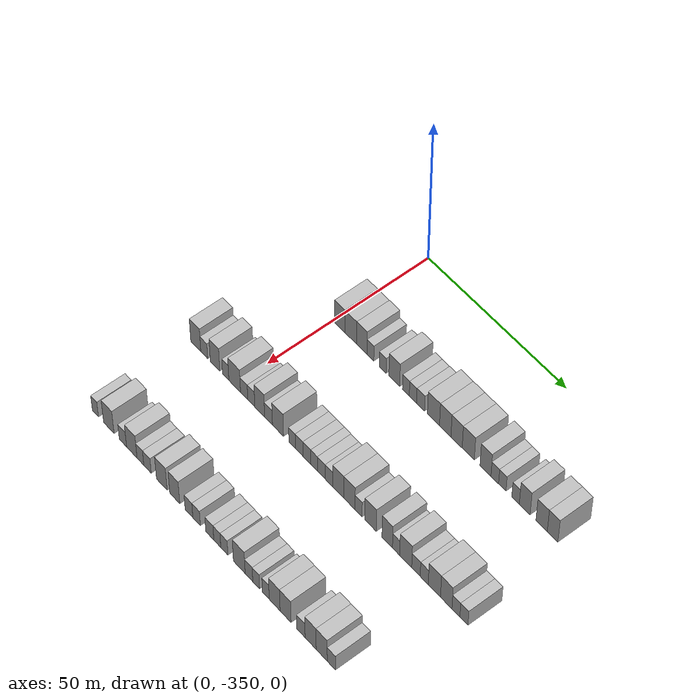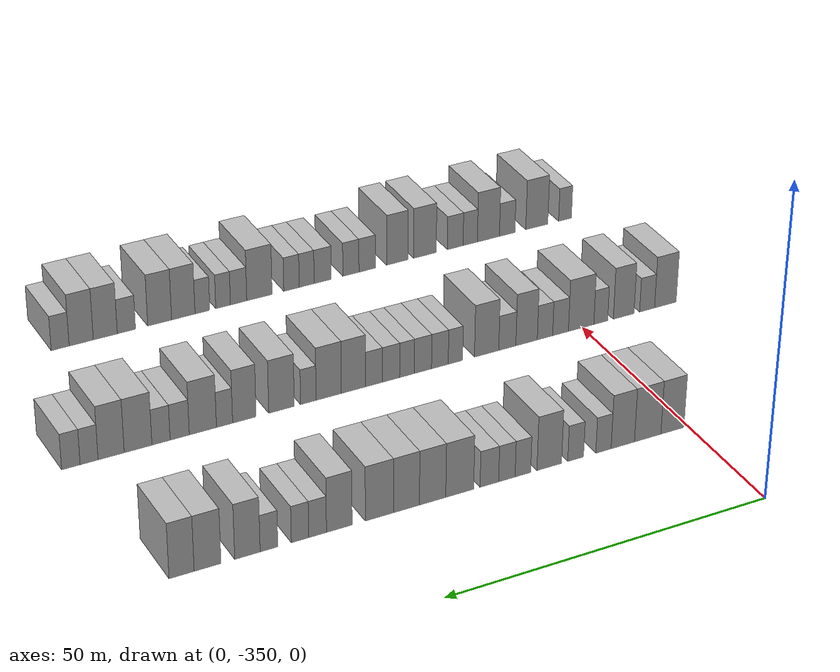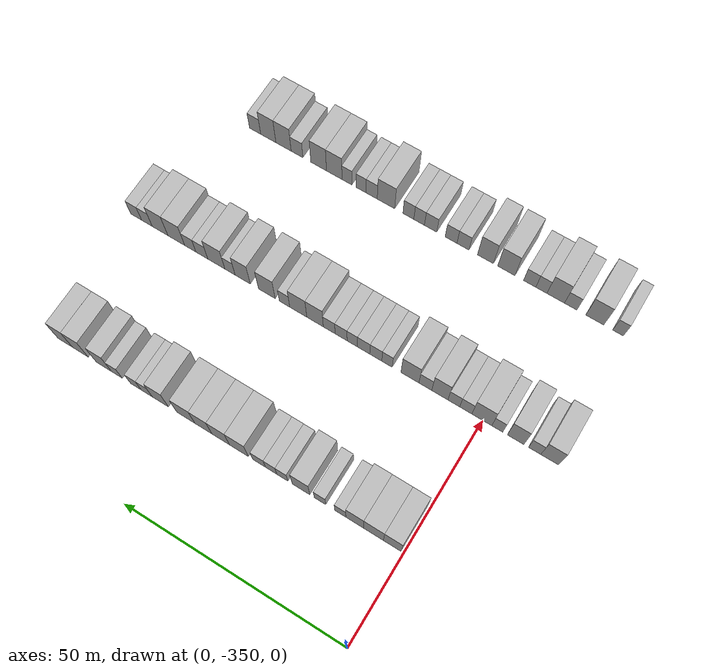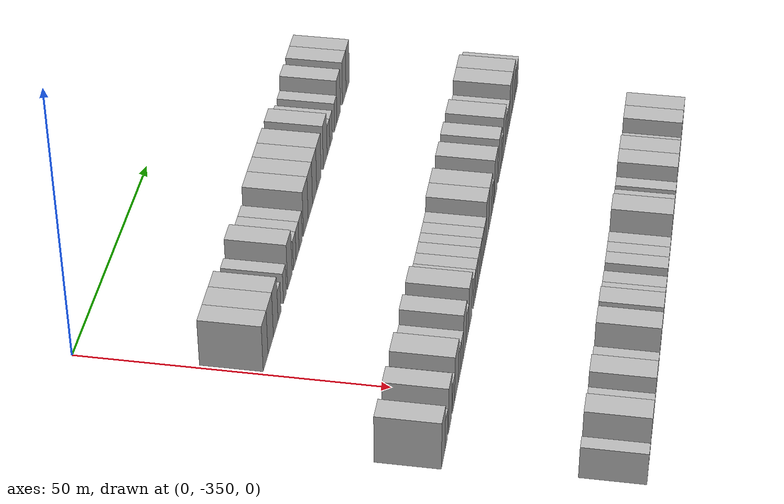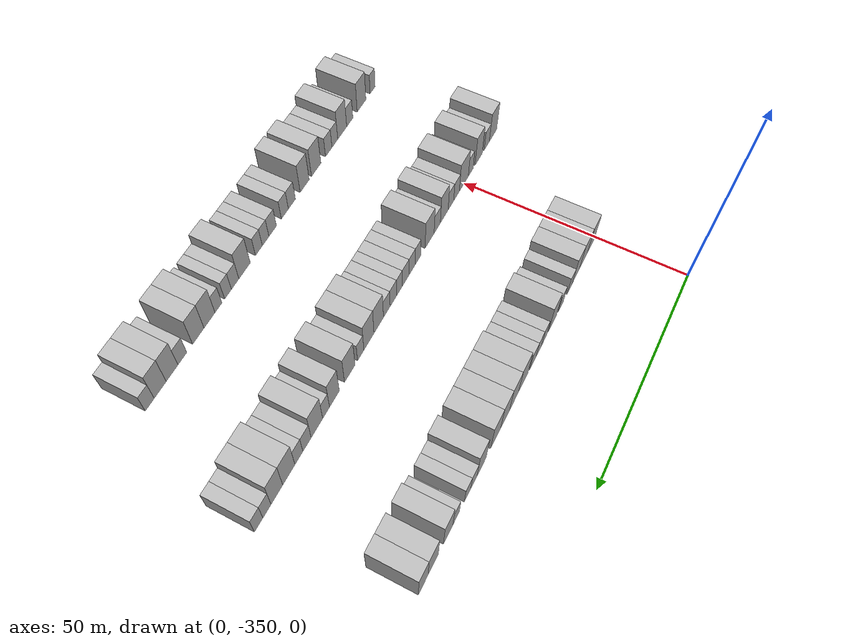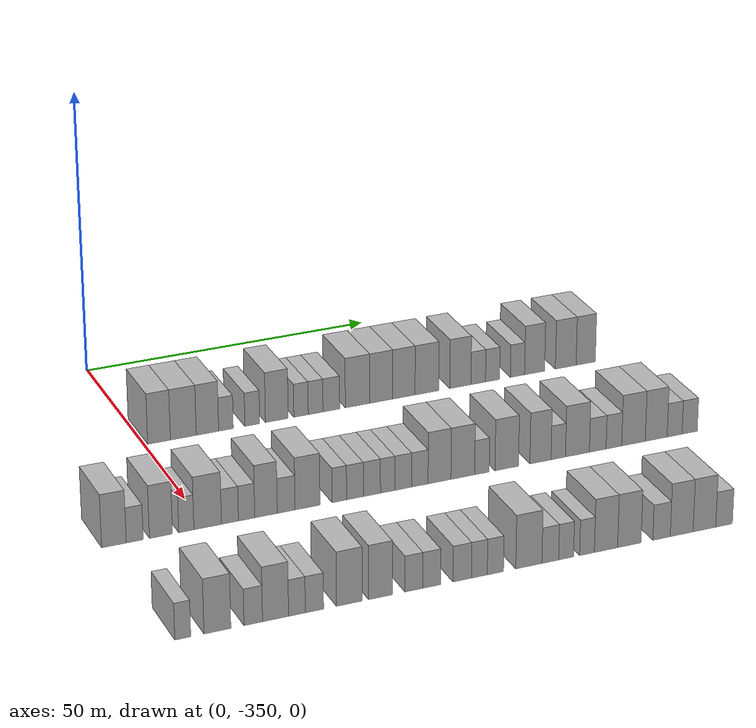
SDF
<sdf version="1.6">
 <world name="default">
  <model name="building_24">
   <static>1</static>
   <pose>25.0000 -347.3957 0 0.000000 0.000000 0.000000</pose>
   <link name="link">
    <pose>0 0 4.50 0 0 0</pose>
    <collision name="collision"><geometry><box><size>10.0000 3.8569 9.0000</size></box></geometry></collision>
    <visual name="visual">
     <cast_shadows>0</cast_shadows>
     <geometry><box><size>10.0000 3.8569 9.0000</size></box></geometry>
     <material>
      <script>
       <uri>model://HANNAS_wall/materials/scripts</uri>
       <uri>model://HANNAS_wall/materials/textures</uri>
       <name>vrc/HANNAS_wall</name>
      </script>
     </material>
    </visual>
   </link>
  </model>
  <model name="building_25">
   <static>1</static>
   <pose>25.0000 -343.2680 0 0.000000 0.000000 0.000000</pose>
   <link name="link">
    <pose>0 0 4.50 0 0 0</pose>
    <collision name="collision"><geometry><box><size>10.0000 4.3986 9.0000</size></box></geometry></collision>
    <visual name="visual">
     <cast_shadows>0</cast_shadows>
     <geometry><box><size>10.0000 4.3986 9.0000</size></box></geometry>
     <material>
      <script>
       <uri>model://HANNAS_wall/materials/scripts</uri>
       <uri>model://HANNAS_wall/materials/textures</uri>
       <name>vrc/HANNAS_wall</name>
      </script>
     </material>
    </visual>
   </link>
  </model>
  <model name="building_26">
   <static>1</static>
   <pose>25.0000 -339.1380 0 0.000000 0.000000 0.000000</pose>
   <link name="link">
    <pose>0 0 4.50 0 0 0</pose>
    <collision name="collision"><geometry><box><size>10.0000 3.8614 9.0000</size></box></geometry></collision>
    <visual name="visual">
     <cast_shadows>0</cast_shadows>
     <geometry><box><size>10.0000 3.8614 9.0000</size></box></geometry>
     <material>
      <script>
       <uri>model://HANNAS_wall/materials/scripts</uri>
       <uri>model://HANNAS_wall/materials/textures</uri>
       <name>vrc/HANNAS_wall</name>
      </script>
     </material>
    </visual>
   </link>
  </model>
  <model name="building_27">
   <static>1</static>
   <pose>25.0000 -335.9510 0 0.000000 0.000000 0.000000</pose>
   <link name="link">
    <pose>0 0 3.00 0 0 0</pose>
    <collision name="collision"><geometry><box><size>10.0000 2.5128 6.0000</size></box></geometry></collision>
    <visual name="visual">
     <cast_shadows>0</cast_shadows>
     <geometry><box><size>10.0000 2.5128 6.0000</size></box></geometry>
     <material>
      <script>
       <uri>model://HANNAS_wall/materials/scripts</uri>
       <uri>model://HANNAS_wall/materials/textures</uri>
       <name>vrc/HANNAS_wall</name>
      </script>
     </material>
    </visual>
   </link>
  </model>
  <model name="building_28">
   <static>1</static>
   <pose>25.0000 -331.4063 0 0.000000 0.000000 0.000000</pose>
   <link name="link">
    <pose>0 0 3.00 0 0 0</pose>
    <collision name="collision"><geometry><box><size>10.0000 2.5765 6.0000</size></box></geometry></collision>
    <visual name="visual">
     <cast_shadows>0</cast_shadows>
     <geometry><box><size>10.0000 2.5765 6.0000</size></box></geometry>
     <material>
      <script>
       <uri>model://HANNAS_wall/materials/scripts</uri>
       <uri>model://HANNAS_wall/materials/textures</uri>
       <name>vrc/HANNAS_wall</name>
      </script>
     </material>
    </visual>
   </link>
  </model>
  <model name="building_29">
   <static>1</static>
   <pose>25.0000 -327.1324 0 0.000000 0.000000 0.000000</pose>
   <link name="link">
    <pose>0 0 4.50 0 0 0</pose>
    <collision name="collision"><geometry><box><size>10.0000 3.9714 9.0000</size></box></geometry></collision>
    <visual name="visual">
     <cast_shadows>0</cast_shadows>
     <geometry><box><size>10.0000 3.9714 9.0000</size></box></geometry>
     <material>
      <script>
       <uri>model://HANNAS_wall/materials/scripts</uri>
       <uri>model://HANNAS_wall/materials/textures</uri>
       <name>vrc/HANNAS_wall</name>
      </script>
     </material>
    </visual>
   </link>
  </model>
  <model name="building_30">
   <static>1</static>
   <pose>25.0000 -322.8995 0 0.000000 0.000000 0.000000</pose>
   <link name="link">
    <pose>0 0 3.00 0 0 0</pose>
    <collision name="collision"><geometry><box><size>10.0000 2.4942 6.0000</size></box></geometry></collision>
    <visual name="visual">
     <cast_shadows>0</cast_shadows>
     <geometry><box><size>10.0000 2.4942 6.0000</size></box></geometry>
     <material>
      <script>
       <uri>model://HANNAS_wall/materials/scripts</uri>
       <uri>model://HANNAS_wall/materials/textures</uri>
       <name>vrc/HANNAS_wall</name>
      </script>
     </material>
    </visual>
   </link>
  </model>
  <model name="building_31">
   <static>1</static>
   <pose>25.0000 -320.3412 0 0.000000 0.000000 0.000000</pose>
   <link name="link">
    <pose>0 0 3.00 0 0 0</pose>
    <collision name="collision"><geometry><box><size>10.0000 2.6224 6.0000</size></box></geometry></collision>
    <visual name="visual">
     <cast_shadows>0</cast_shadows>
     <geometry><box><size>10.0000 2.6224 6.0000</size></box></geometry>
     <material>
      <script>
       <uri>model://HANNAS_wall/materials/scripts</uri>
       <uri>model://HANNAS_wall/materials/textures</uri>
       <name>vrc/HANNAS_wall</name>
      </script>
     </material>
    </visual>
   </link>
  </model>
  <model name="building_32">
   <static>1</static>
   <pose>25.0000 -317.5554 0 0.000000 0.000000 0.000000</pose>
   <link name="link">
    <pose>0 0 3.00 0 0 0</pose>
    <collision name="collision"><geometry><box><size>10.0000 2.9493 6.0000</size></box></geometry></collision>
    <visual name="visual">
     <cast_shadows>0</cast_shadows>
     <geometry><box><size>10.0000 2.9493 6.0000</size></box></geometry>
     <material>
      <script>
       <uri>model://HANNAS_wall/materials/scripts</uri>
       <uri>model://HANNAS_wall/materials/textures</uri>
       <name>vrc/HANNAS_wall</name>
      </script>
     </material>
    </visual>
   </link>
  </model>
  <model name="building_33">
   <static>1</static>
   <pose>25.0000 -312.8945 0 0.000000 0.000000 0.000000</pose>
   <link name="link">
    <pose>0 0 4.50 0 0 0</pose>
    <collision name="collision"><geometry><box><size>10.0000 4.3726 9.0000</size></box></geometry></collision>
    <visual name="visual">
     <cast_shadows>0</cast_shadows>
     <geometry><box><size>10.0000 4.3726 9.0000</size></box></geometry>
     <material>
      <script>
       <uri>model://HANNAS_wall/materials/scripts</uri>
       <uri>model://HANNAS_wall/materials/textures</uri>
       <name>vrc/HANNAS_wall</name>
      </script>
     </material>
    </visual>
   </link>
  </model>
  <model name="building_34">
   <static>1</static>
   <pose>25.0000 -308.6578 0 0.000000 0.000000 0.000000</pose>
   <link name="link">
    <pose>0 0 4.50 0 0 0</pose>
    <collision name="collision"><geometry><box><size>10.0000 4.1007 9.0000</size></box></geometry></collision>
    <visual name="visual">
     <cast_shadows>0</cast_shadows>
     <geometry><box><size>10.0000 4.1007 9.0000</size></box></geometry>
     <material>
      <script>
       <uri>model://HANNAS_wall/materials/scripts</uri>
       <uri>model://HANNAS_wall/materials/textures</uri>
       <name>vrc/HANNAS_wall</name>
      </script>
     </material>
    </visual>
   </link>
  </model>
  <model name="building_35">
   <static>1</static>
   <pose>25.0000 -304.6056 0 0.000000 0.000000 0.000000</pose>
   <link name="link">
    <pose>0 0 4.50 0 0 0</pose>
    <collision name="collision"><geometry><box><size>10.0000 4.0038 9.0000</size></box></geometry></collision>
    <visual name="visual">
     <cast_shadows>0</cast_shadows>
     <geometry><box><size>10.0000 4.0038 9.0000</size></box></geometry>
     <material>
      <script>
       <uri>model://HANNAS_wall/materials/scripts</uri>
       <uri>model://HANNAS_wall/materials/textures</uri>
       <name>vrc/HANNAS_wall</name>
      </script>
     </material>
    </visual>
   </link>
  </model>
  <model name="building_36">
   <static>1</static>
   <pose>25.0000 -300.4515 0 0.000000 0.000000 0.000000</pose>
   <link name="link">
    <pose>0 0 4.50 0 0 0</pose>
    <collision name="collision"><geometry><box><size>10.0000 4.3042 9.0000</size></box></geometry></collision>
    <visual name="visual">
     <cast_shadows>0</cast_shadows>
     <geometry><box><size>10.0000 4.3042 9.0000</size></box></geometry>
     <material>
      <script>
       <uri>model://HANNAS_wall/materials/scripts</uri>
       <uri>model://HANNAS_wall/materials/textures</uri>
       <name>vrc/HANNAS_wall</name>
      </script>
     </material>
    </visual>
   </link>
  </model>
  <model name="building_37">
   <static>1</static>
   <pose>25.0000 -294.3647 0 0.000000 0.000000 0.000000</pose>
   <link name="link">
    <pose>0 0 4.50 0 0 0</pose>
    <collision name="collision"><geometry><box><size>10.0000 3.8694 9.0000</size></box></geometry></collision>
    <visual name="visual">
     <cast_shadows>0</cast_shadows>
     <geometry><box><size>10.0000 3.8694 9.0000</size></box></geometry>
     <material>
      <script>
       <uri>model://HANNAS_wall/materials/scripts</uri>
       <uri>model://HANNAS_wall/materials/textures</uri>
       <name>vrc/HANNAS_wall</name>
      </script>
     </material>
    </visual>
   </link>
  </model>
  <model name="building_38">
   <static>1</static>
   <pose>25.0000 -291.0987 0 0.000000 0.000000 0.000000</pose>
   <link name="link">
    <pose>0 0 3.00 0 0 0</pose>
    <collision name="collision"><geometry><box><size>10.0000 2.6625 6.0000</size></box></geometry></collision>
    <visual name="visual">
     <cast_shadows>0</cast_shadows>
     <geometry><box><size>10.0000 2.6625 6.0000</size></box></geometry>
     <material>
      <script>
       <uri>model://HANNAS_wall/materials/scripts</uri>
       <uri>model://HANNAS_wall/materials/textures</uri>
       <name>vrc/HANNAS_wall</name>
      </script>
     </material>
    </visual>
   </link>
  </model>
  <model name="building_39">
   <static>1</static>
   <pose>25.0000 -288.4681 0 0.000000 0.000000 0.000000</pose>
   <link name="link">
    <pose>0 0 3.00 0 0 0</pose>
    <collision name="collision"><geometry><box><size>10.0000 2.5986 6.0000</size></box></geometry></collision>
    <visual name="visual">
     <cast_shadows>0</cast_shadows>
     <geometry><box><size>10.0000 2.5986 6.0000</size></box></geometry>
     <material>
      <script>
       <uri>model://HANNAS_wall/materials/scripts</uri>
       <uri>model://HANNAS_wall/materials/textures</uri>
       <name>vrc/HANNAS_wall</name>
      </script>
     </material>
    </visual>
   </link>
  </model>
  <model name="building_40">
   <static>1</static>
   <pose>25.0000 -283.8623 0 0.000000 0.000000 0.000000</pose>
   <link name="link">
    <pose>0 0 3.00 0 0 0</pose>
    <collision name="collision"><geometry><box><size>10.0000 2.6131 6.0000</size></box></geometry></collision>
    <visual name="visual">
     <cast_shadows>0</cast_shadows>
     <geometry><box><size>10.0000 2.6131 6.0000</size></box></geometry>
     <material>
      <script>
       <uri>model://HANNAS_wall/materials/scripts</uri>
       <uri>model://HANNAS_wall/materials/textures</uri>
       <name>vrc/HANNAS_wall</name>
      </script>
     </material>
    </visual>
   </link>
  </model>
  <model name="building_41">
   <static>1</static>
   <pose>25.0000 -280.6888 0 0.000000 0.000000 0.000000</pose>
   <link name="link">
    <pose>0 0 4.50 0 0 0</pose>
    <collision name="collision"><geometry><box><size>10.0000 3.7339 9.0000</size></box></geometry></collision>
    <visual name="visual">
     <cast_shadows>0</cast_shadows>
     <geometry><box><size>10.0000 3.7339 9.0000</size></box></geometry>
     <material>
      <script>
       <uri>model://HANNAS_wall/materials/scripts</uri>
       <uri>model://HANNAS_wall/materials/textures</uri>
       <name>vrc/HANNAS_wall</name>
      </script>
     </material>
    </visual>
   </link>
  </model>
  <model name="building_42">
   <static>1</static>
   <pose>25.0000 -274.8779 0 0.000000 0.000000 0.000000</pose>
   <link name="link">
    <pose>0 0 4.50 0 0 0</pose>
    <collision name="collision"><geometry><box><size>10.0000 3.8879 9.0000</size></box></geometry></collision>
    <visual name="visual">
     <cast_shadows>0</cast_shadows>
     <geometry><box><size>10.0000 3.8879 9.0000</size></box></geometry>
     <material>
      <script>
       <uri>model://HANNAS_wall/materials/scripts</uri>
       <uri>model://HANNAS_wall/materials/textures</uri>
       <name>vrc/HANNAS_wall</name>
      </script>
     </material>
    </visual>
   </link>
  </model>
  <model name="building_43">
   <static>1</static>
   <pose>25.0000 -271.1215 0 0.000000 0.000000 0.000000</pose>
   <link name="link">
    <pose>0 0 4.50 0 0 0</pose>
    <collision name="collision"><geometry><box><size>10.0000 3.6248 9.0000</size></box></geometry></collision>
    <visual name="visual">
     <cast_shadows>0</cast_shadows>
     <geometry><box><size>10.0000 3.6248 9.0000</size></box></geometry>
     <material>
      <script>
       <uri>model://HANNAS_wall/materials/scripts</uri>
       <uri>model://HANNAS_wall/materials/textures</uri>
       <name>vrc/HANNAS_wall</name>
      </script>
     </material>
    </visual>
   </link>
  </model>
  <model name="building_244">
   <static>1</static>
   <pose>55.0000 -364.7616 0 0.000000 0.000000 0.000000</pose>
   <link name="link">
    <pose>0 0 4.50 0 0 0</pose>
    <collision name="collision"><geometry><box><size>10.0000 3.8888 9.0000</size></box></geometry></collision>
    <visual name="visual">
     <cast_shadows>0</cast_shadows>
     <geometry><box><size>10.0000 3.8888 9.0000</size></box></geometry>
     <material>
      <script>
       <uri>model://HANNAS_wall/materials/scripts</uri>
       <uri>model://HANNAS_wall/materials/textures</uri>
       <name>vrc/HANNAS_wall</name>
      </script>
     </material>
    </visual>
   </link>
  </model>
  <model name="building_245">
   <static>1</static>
   <pose>55.0000 -361.4739 0 0.000000 0.000000 0.000000</pose>
   <link name="link">
    <pose>0 0 3.00 0 0 0</pose>
    <collision name="collision"><geometry><box><size>10.0000 2.6866 6.0000</size></box></geometry></collision>
    <visual name="visual">
     <cast_shadows>0</cast_shadows>
     <geometry><box><size>10.0000 2.6866 6.0000</size></box></geometry>
     <material>
      <script>
       <uri>model://HANNAS_wall/materials/scripts</uri>
       <uri>model://HANNAS_wall/materials/textures</uri>
       <name>vrc/HANNAS_wall</name>
      </script>
     </material>
    </visual>
   </link>
  </model>
  <model name="building_246">
   <static>1</static>
   <pose>55.0000 -357.2918 0 0.000000 0.000000 0.000000</pose>
   <link name="link">
    <pose>0 0 4.50 0 0 0</pose>
    <collision name="collision"><geometry><box><size>10.0000 3.6776 9.0000</size></box></geometry></collision>
    <visual name="visual">
     <cast_shadows>0</cast_shadows>
     <geometry><box><size>10.0000 3.6776 9.0000</size></box></geometry>
     <material>
      <script>
       <uri>model://HANNAS_wall/materials/scripts</uri>
       <uri>model://HANNAS_wall/materials/textures</uri>
       <name>vrc/HANNAS_wall</name>
      </script>
     </material>
    </visual>
   </link>
  </model>
  <model name="building_247">
   <static>1</static>
   <pose>55.0000 -353.2321 0 0.000000 0.000000 0.000000</pose>
   <link name="link">
    <pose>0 0 3.00 0 0 0</pose>
    <collision name="collision"><geometry><box><size>10.0000 2.4418 6.0000</size></box></geometry></collision>
    <visual name="visual">
     <cast_shadows>0</cast_shadows>
     <geometry><box><size>10.0000 2.4418 6.0000</size></box></geometry>
     <material>
      <script>
       <uri>model://HANNAS_wall/materials/scripts</uri>
       <uri>model://HANNAS_wall/materials/textures</uri>
       <name>vrc/HANNAS_wall</name>
      </script>
     </material>
    </visual>
   </link>
  </model>
  <model name="building_248">
   <static>1</static>
   <pose>55.0000 -349.7843 0 0.000000 0.000000 0.000000</pose>
   <link name="link">
    <pose>0 0 4.50 0 0 0</pose>
    <collision name="collision"><geometry><box><size>10.0000 4.4538 9.0000</size></box></geometry></collision>
    <visual name="visual">
     <cast_shadows>0</cast_shadows>
     <geometry><box><size>10.0000 4.4538 9.0000</size></box></geometry>
     <material>
      <script>
       <uri>model://HANNAS_wall/materials/scripts</uri>
       <uri>model://HANNAS_wall/materials/textures</uri>
       <name>vrc/HANNAS_wall</name>
      </script>
     </material>
    </visual>
   </link>
  </model>
  <model name="building_249">
   <static>1</static>
   <pose>55.0000 -346.1826 0 0.000000 0.000000 0.000000</pose>
   <link name="link">
    <pose>0 0 3.00 0 0 0</pose>
    <collision name="collision"><geometry><box><size>10.0000 2.7496 6.0000</size></box></geometry></collision>
    <visual name="visual">
     <cast_shadows>0</cast_shadows>
     <geometry><box><size>10.0000 2.7496 6.0000</size></box></geometry>
     <material>
      <script>
       <uri>model://HANNAS_wall/materials/scripts</uri>
       <uri>model://HANNAS_wall/materials/textures</uri>
       <name>vrc/HANNAS_wall</name>
      </script>
     </material>
    </visual>
   </link>
  </model>
  <model name="building_250">
   <static>1</static>
   <pose>55.0000 -343.4748 0 0.000000 0.000000 0.000000</pose>
   <link name="link">
    <pose>0 0 3.00 0 0 0</pose>
    <collision name="collision"><geometry><box><size>10.0000 2.6660 6.0000</size></box></geometry></collision>
    <visual name="visual">
     <cast_shadows>0</cast_shadows>
     <geometry><box><size>10.0000 2.6660 6.0000</size></box></geometry>
     <material>
      <script>
       <uri>model://HANNAS_wall/materials/scripts</uri>
       <uri>model://HANNAS_wall/materials/textures</uri>
       <name>vrc/HANNAS_wall</name>
      </script>
     </material>
    </visual>
   </link>
  </model>
  <model name="building_251">
   <static>1</static>
   <pose>55.0000 -340.2932 0 0.000000 0.000000 0.000000</pose>
   <link name="link">
    <pose>0 0 4.50 0 0 0</pose>
    <collision name="collision"><geometry><box><size>10.0000 3.6972 9.0000</size></box></geometry></collision>
    <visual name="visual">
     <cast_shadows>0</cast_shadows>
     <geometry><box><size>10.0000 3.6972 9.0000</size></box></geometry>
     <material>
      <script>
       <uri>model://HANNAS_wall/materials/scripts</uri>
       <uri>model://HANNAS_wall/materials/textures</uri>
       <name>vrc/HANNAS_wall</name>
      </script>
     </material>
    </visual>
   </link>
  </model>
  <model name="building_252">
   <static>1</static>
   <pose>55.0000 -336.9794 0 0.000000 0.000000 0.000000</pose>
   <link name="link">
    <pose>0 0 3.00 0 0 0</pose>
    <collision name="collision"><geometry><box><size>10.0000 2.9304 6.0000</size></box></geometry></collision>
    <visual name="visual">
     <cast_shadows>0</cast_shadows>
     <geometry><box><size>10.0000 2.9304 6.0000</size></box></geometry>
     <material>
      <script>
       <uri>model://HANNAS_wall/materials/scripts</uri>
       <uri>model://HANNAS_wall/materials/textures</uri>
       <name>vrc/HANNAS_wall</name>
      </script>
     </material>
    </visual>
   </link>
  </model>
  <model name="building_253">
   <static>1</static>
   <pose>55.0000 -333.4476 0 0.000000 0.000000 0.000000</pose>
   <link name="link">
    <pose>0 0 4.50 0 0 0</pose>
    <collision name="collision"><geometry><box><size>10.0000 4.1332 9.0000</size></box></geometry></collision>
    <visual name="visual">
     <cast_shadows>0</cast_shadows>
     <geometry><box><size>10.0000 4.1332 9.0000</size></box></geometry>
     <material>
      <script>
       <uri>model://HANNAS_wall/materials/scripts</uri>
       <uri>model://HANNAS_wall/materials/textures</uri>
       <name>vrc/HANNAS_wall</name>
      </script>
     </material>
    </visual>
   </link>
  </model>
  <model name="building_254">
   <static>1</static>
   <pose>55.0000 -328.1668 0 0.000000 0.000000 0.000000</pose>
   <link name="link">
    <pose>0 0 3.00 0 0 0</pose>
    <collision name="collision"><geometry><box><size>10.0000 2.4283 6.0000</size></box></geometry></collision>
    <visual name="visual">
     <cast_shadows>0</cast_shadows>
     <geometry><box><size>10.0000 2.4283 6.0000</size></box></geometry>
     <material>
      <script>
       <uri>model://HANNAS_wall/materials/scripts</uri>
       <uri>model://HANNAS_wall/materials/textures</uri>
       <name>vrc/HANNAS_wall</name>
      </script>
     </material>
    </visual>
   </link>
  </model>
  <model name="building_255">
   <static>1</static>
   <pose>55.0000 -325.5497 0 0.000000 0.000000 0.000000</pose>
   <link name="link">
    <pose>0 0 3.00 0 0 0</pose>
    <collision name="collision"><geometry><box><size>10.0000 2.8059 6.0000</size></box></geometry></collision>
    <visual name="visual">
     <cast_shadows>0</cast_shadows>
     <geometry><box><size>10.0000 2.8059 6.0000</size></box></geometry>
     <material>
      <script>
       <uri>model://HANNAS_wall/materials/scripts</uri>
       <uri>model://HANNAS_wall/materials/textures</uri>
       <name>vrc/HANNAS_wall</name>
      </script>
     </material>
    </visual>
   </link>
  </model>
  <model name="building_256">
   <static>1</static>
   <pose>55.0000 -322.7046 0 0.000000 0.000000 0.000000</pose>
   <link name="link">
    <pose>0 0 3.00 0 0 0</pose>
    <collision name="collision"><geometry><box><size>10.0000 2.8844 6.0000</size></box></geometry></collision>
    <visual name="visual">
     <cast_shadows>0</cast_shadows>
     <geometry><box><size>10.0000 2.8844 6.0000</size></box></geometry>
     <material>
      <script>
       <uri>model://HANNAS_wall/materials/scripts</uri>
       <uri>model://HANNAS_wall/materials/textures</uri>
       <name>vrc/HANNAS_wall</name>
      </script>
     </material>
    </visual>
   </link>
  </model>
  <model name="building_257">
   <static>1</static>
   <pose>55.0000 -320.0494 0 0.000000 0.000000 0.000000</pose>
   <link name="link">
    <pose>0 0 3.00 0 0 0</pose>
    <collision name="collision"><geometry><box><size>10.0000 2.4260 6.0000</size></box></geometry></collision>
    <visual name="visual">
     <cast_shadows>0</cast_shadows>
     <geometry><box><size>10.0000 2.4260 6.0000</size></box></geometry>
     <material>
      <script>
       <uri>model://HANNAS_wall/materials/scripts</uri>
       <uri>model://HANNAS_wall/materials/textures</uri>
       <name>vrc/HANNAS_wall</name>
      </script>
     </material>
    </visual>
   </link>
  </model>
  <model name="building_258">
   <static>1</static>
   <pose>55.0000 -317.4178 0 0.000000 0.000000 0.000000</pose>
   <link name="link">
    <pose>0 0 3.00 0 0 0</pose>
    <collision name="collision"><geometry><box><size>10.0000 2.8371 6.0000</size></box></geometry></collision>
    <visual name="visual">
     <cast_shadows>0</cast_shadows>
     <geometry><box><size>10.0000 2.8371 6.0000</size></box></geometry>
     <material>
      <script>
       <uri>model://HANNAS_wall/materials/scripts</uri>
       <uri>model://HANNAS_wall/materials/textures</uri>
       <name>vrc/HANNAS_wall</name>
      </script>
     </material>
    </visual>
   </link>
  </model>
  <model name="building_259">
   <static>1</static>
   <pose>55.0000 -314.5992 0 0.000000 0.000000 0.000000</pose>
   <link name="link">
    <pose>0 0 3.00 0 0 0</pose>
    <collision name="collision"><geometry><box><size>10.0000 2.8001 6.0000</size></box></geometry></collision>
    <visual name="visual">
     <cast_shadows>0</cast_shadows>
     <geometry><box><size>10.0000 2.8001 6.0000</size></box></geometry>
     <material>
      <script>
       <uri>model://HANNAS_wall/materials/scripts</uri>
       <uri>model://HANNAS_wall/materials/textures</uri>
       <name>vrc/HANNAS_wall</name>
      </script>
     </material>
    </visual>
   </link>
  </model>
  <model name="building_260">
   <static>1</static>
   <pose>55.0000 -311.2375 0 0.000000 0.000000 0.000000</pose>
   <link name="link">
    <pose>0 0 4.50 0 0 0</pose>
    <collision name="collision"><geometry><box><size>10.0000 3.9233 9.0000</size></box></geometry></collision>
    <visual name="visual">
     <cast_shadows>0</cast_shadows>
     <geometry><box><size>10.0000 3.9233 9.0000</size></box></geometry>
     <material>
      <script>
       <uri>model://HANNAS_wall/materials/scripts</uri>
       <uri>model://HANNAS_wall/materials/textures</uri>
       <name>vrc/HANNAS_wall</name>
      </script>
     </material>
    </visual>
   </link>
  </model>
  <model name="building_261">
   <static>1</static>
   <pose>55.0000 -307.2327 0 0.000000 0.000000 0.000000</pose>
   <link name="link">
    <pose>0 0 4.50 0 0 0</pose>
    <collision name="collision"><geometry><box><size>10.0000 4.0862 9.0000</size></box></geometry></collision>
    <visual name="visual">
     <cast_shadows>0</cast_shadows>
     <geometry><box><size>10.0000 4.0862 9.0000</size></box></geometry>
     <material>
      <script>
       <uri>model://HANNAS_wall/materials/scripts</uri>
       <uri>model://HANNAS_wall/materials/textures</uri>
       <name>vrc/HANNAS_wall</name>
      </script>
     </material>
    </visual>
   </link>
  </model>
  <model name="building_262">
   <static>1</static>
   <pose>55.0000 -303.9327 0 0.000000 0.000000 0.000000</pose>
   <link name="link">
    <pose>0 0 3.00 0 0 0</pose>
    <collision name="collision"><geometry><box><size>10.0000 2.5137 6.0000</size></box></geometry></collision>
    <visual name="visual">
     <cast_shadows>0</cast_shadows>
     <geometry><box><size>10.0000 2.5137 6.0000</size></box></geometry>
     <material>
      <script>
       <uri>model://HANNAS_wall/materials/scripts</uri>
       <uri>model://HANNAS_wall/materials/textures</uri>
       <name>vrc/HANNAS_wall</name>
      </script>
     </material>
    </visual>
   </link>
  </model>
  <model name="building_263">
   <static>1</static>
   <pose>55.0000 -299.6352 0 0.000000 0.000000 0.000000</pose>
   <link name="link">
    <pose>0 0 4.50 0 0 0</pose>
    <collision name="collision"><geometry><box><size>10.0000 4.0812 9.0000</size></box></geometry></collision>
    <visual name="visual">
     <cast_shadows>0</cast_shadows>
     <geometry><box><size>10.0000 4.0812 9.0000</size></box></geometry>
     <material>
      <script>
       <uri>model://HANNAS_wall/materials/scripts</uri>
       <uri>model://HANNAS_wall/materials/textures</uri>
       <name>vrc/HANNAS_wall</name>
      </script>
     </material>
    </visual>
   </link>
  </model>
  <model name="building_264">
   <static>1</static>
   <pose>55.0000 -293.7382 0 0.000000 0.000000 0.000000</pose>
   <link name="link">
    <pose>0 0 4.50 0 0 0</pose>
    <collision name="collision"><geometry><box><size>10.0000 3.7128 9.0000</size></box></geometry></collision>
    <visual name="visual">
     <cast_shadows>0</cast_shadows>
     <geometry><box><size>10.0000 3.7128 9.0000</size></box></geometry>
     <material>
      <script>
       <uri>model://HANNAS_wall/materials/scripts</uri>
       <uri>model://HANNAS_wall/materials/textures</uri>
       <name>vrc/HANNAS_wall</name>
      </script>
     </material>
    </visual>
   </link>
  </model>
  <model name="building_265">
   <static>1</static>
   <pose>55.0000 -290.6128 0 0.000000 0.000000 0.000000</pose>
   <link name="link">
    <pose>0 0 3.00 0 0 0</pose>
    <collision name="collision"><geometry><box><size>10.0000 2.5380 6.0000</size></box></geometry></collision>
    <visual name="visual">
     <cast_shadows>0</cast_shadows>
     <geometry><box><size>10.0000 2.5380 6.0000</size></box></geometry>
     <material>
      <script>
       <uri>model://HANNAS_wall/materials/scripts</uri>
       <uri>model://HANNAS_wall/materials/textures</uri>
       <name>vrc/HANNAS_wall</name>
      </script>
     </material>
    </visual>
   </link>
  </model>
  <model name="building_266">
   <static>1</static>
   <pose>55.0000 -287.2276 0 0.000000 0.000000 0.000000</pose>
   <link name="link">
    <pose>0 0 4.50 0 0 0</pose>
    <collision name="collision"><geometry><box><size>10.0000 4.2324 9.0000</size></box></geometry></collision>
    <visual name="visual">
     <cast_shadows>0</cast_shadows>
     <geometry><box><size>10.0000 4.2324 9.0000</size></box></geometry>
     <material>
      <script>
       <uri>model://HANNAS_wall/materials/scripts</uri>
       <uri>model://HANNAS_wall/materials/textures</uri>
       <name>vrc/HANNAS_wall</name>
      </script>
     </material>
    </visual>
   </link>
  </model>
  <model name="building_267">
   <static>1</static>
   <pose>55.0000 -283.6279 0 0.000000 0.000000 0.000000</pose>
   <link name="link">
    <pose>0 0 3.00 0 0 0</pose>
    <collision name="collision"><geometry><box><size>10.0000 2.9670 6.0000</size></box></geometry></collision>
    <visual name="visual">
     <cast_shadows>0</cast_shadows>
     <geometry><box><size>10.0000 2.9670 6.0000</size></box></geometry>
     <material>
      <script>
       <uri>model://HANNAS_wall/materials/scripts</uri>
       <uri>model://HANNAS_wall/materials/textures</uri>
       <name>vrc/HANNAS_wall</name>
      </script>
     </material>
    </visual>
   </link>
  </model>
  <model name="building_268">
   <static>1</static>
   <pose>55.0000 -280.7452 0 0.000000 0.000000 0.000000</pose>
   <link name="link">
    <pose>0 0 3.00 0 0 0</pose>
    <collision name="collision"><geometry><box><size>10.0000 2.7983 6.0000</size></box></geometry></collision>
    <visual name="visual">
     <cast_shadows>0</cast_shadows>
     <geometry><box><size>10.0000 2.7983 6.0000</size></box></geometry>
     <material>
      <script>
       <uri>model://HANNAS_wall/materials/scripts</uri>
       <uri>model://HANNAS_wall/materials/textures</uri>
       <name>vrc/HANNAS_wall</name>
      </script>
     </material>
    </visual>
   </link>
  </model>
  <model name="building_269">
   <static>1</static>
   <pose>55.0000 -277.2276 0 0.000000 0.000000 0.000000</pose>
   <link name="link">
    <pose>0 0 4.50 0 0 0</pose>
    <collision name="collision"><geometry><box><size>10.0000 4.2370 9.0000</size></box></geometry></collision>
    <visual name="visual">
     <cast_shadows>0</cast_shadows>
     <geometry><box><size>10.0000 4.2370 9.0000</size></box></geometry>
     <material>
      <script>
       <uri>model://HANNAS_wall/materials/scripts</uri>
       <uri>model://HANNAS_wall/materials/textures</uri>
       <name>vrc/HANNAS_wall</name>
      </script>
     </material>
    </visual>
   </link>
  </model>
  <model name="building_270">
   <static>1</static>
   <pose>55.0000 -273.1291 0 0.000000 0.000000 0.000000</pose>
   <link name="link">
    <pose>0 0 4.50 0 0 0</pose>
    <collision name="collision"><geometry><box><size>10.0000 3.9600 9.0000</size></box></geometry></collision>
    <visual name="visual">
     <cast_shadows>0</cast_shadows>
     <geometry><box><size>10.0000 3.9600 9.0000</size></box></geometry>
     <material>
      <script>
       <uri>model://HANNAS_wall/materials/scripts</uri>
       <uri>model://HANNAS_wall/materials/textures</uri>
       <name>vrc/HANNAS_wall</name>
      </script>
     </material>
    </visual>
   </link>
  </model>
  <model name="building_271">
   <static>1</static>
   <pose>55.0000 -269.7967 0 0.000000 0.000000 0.000000</pose>
   <link name="link">
    <pose>0 0 3.00 0 0 0</pose>
    <collision name="collision"><geometry><box><size>10.0000 2.7049 6.0000</size></box></geometry></collision>
    <visual name="visual">
     <cast_shadows>0</cast_shadows>
     <geometry><box><size>10.0000 2.7049 6.0000</size></box></geometry>
     <material>
      <script>
       <uri>model://HANNAS_wall/materials/scripts</uri>
       <uri>model://HANNAS_wall/materials/textures</uri>
       <name>vrc/HANNAS_wall</name>
      </script>
     </material>
    </visual>
   </link>
  </model>
  <model name="building_272">
   <static>1</static>
   <pose>55.0000 -267.0567 0 0.000000 0.000000 0.000000</pose>
   <link name="link">
    <pose>0 0 3.00 0 0 0</pose>
    <collision name="collision"><geometry><box><size>10.0000 2.7749 6.0000</size></box></geometry></collision>
    <visual name="visual">
     <cast_shadows>0</cast_shadows>
     <geometry><box><size>10.0000 2.7749 6.0000</size></box></geometry>
     <material>
      <script>
       <uri>model://HANNAS_wall/materials/scripts</uri>
       <uri>model://HANNAS_wall/materials/textures</uri>
       <name>vrc/HANNAS_wall</name>
      </script>
     </material>
    </visual>
   </link>
  </model>
  <model name="building_478">
   <static>1</static>
   <pose>85.0000 -364.2377 0 0.000000 0.000000 0.000000</pose>
   <link name="link">
    <pose>0 0 3.00 0 0 0</pose>
    <collision name="collision"><geometry><box><size>10.0000 2.4028 6.0000</size></box></geometry></collision>
    <visual name="visual">
     <cast_shadows>0</cast_shadows>
     <geometry><box><size>10.0000 2.4028 6.0000</size></box></geometry>
     <material>
      <script>
       <uri>model://HANNAS_wall/materials/scripts</uri>
       <uri>model://HANNAS_wall/materials/textures</uri>
       <name>vrc/HANNAS_wall</name>
      </script>
     </material>
    </visual>
   </link>
  </model>
  <model name="building_479">
   <static>1</static>
   <pose>85.0000 -358.9906 0 0.000000 0.000000 0.000000</pose>
   <link name="link">
    <pose>0 0 4.50 0 0 0</pose>
    <collision name="collision"><geometry><box><size>10.0000 4.0914 9.0000</size></box></geometry></collision>
    <visual name="visual">
     <cast_shadows>0</cast_shadows>
     <geometry><box><size>10.0000 4.0914 9.0000</size></box></geometry>
     <material>
      <script>
       <uri>model://HANNAS_wall/materials/scripts</uri>
       <uri>model://HANNAS_wall/materials/textures</uri>
       <name>vrc/HANNAS_wall</name>
      </script>
     </material>
    </visual>
   </link>
  </model>
  <model name="building_480">
   <static>1</static>
   <pose>85.0000 -353.5237 0 0.000000 0.000000 0.000000</pose>
   <link name="link">
    <pose>0 0 3.00 0 0 0</pose>
    <collision name="collision"><geometry><box><size>10.0000 2.8424 6.0000</size></box></geometry></collision>
    <visual name="visual">
     <cast_shadows>0</cast_shadows>
     <geometry><box><size>10.0000 2.8424 6.0000</size></box></geometry>
     <material>
      <script>
       <uri>model://HANNAS_wall/materials/scripts</uri>
       <uri>model://HANNAS_wall/materials/textures</uri>
       <name>vrc/HANNAS_wall</name>
      </script>
     </material>
    </visual>
   </link>
  </model>
  <model name="building_481">
   <static>1</static>
   <pose>85.0000 -350.0919 0 0.000000 0.000000 0.000000</pose>
   <link name="link">
    <pose>0 0 4.50 0 0 0</pose>
    <collision name="collision"><geometry><box><size>10.0000 4.0212 9.0000</size></box></geometry></collision>
    <visual name="visual">
     <cast_shadows>0</cast_shadows>
     <geometry><box><size>10.0000 4.0212 9.0000</size></box></geometry>
     <material>
      <script>
       <uri>model://HANNAS_wall/materials/scripts</uri>
       <uri>model://HANNAS_wall/materials/textures</uri>
       <name>vrc/HANNAS_wall</name>
      </script>
     </material>
    </visual>
   </link>
  </model>
  <model name="building_482">
   <static>1</static>
   <pose>85.0000 -346.7862 0 0.000000 0.000000 0.000000</pose>
   <link name="link">
    <pose>0 0 3.00 0 0 0</pose>
    <collision name="collision"><geometry><box><size>10.0000 2.5903 6.0000</size></box></geometry></collision>
    <visual name="visual">
     <cast_shadows>0</cast_shadows>
     <geometry><box><size>10.0000 2.5903 6.0000</size></box></geometry>
     <material>
      <script>
       <uri>model://HANNAS_wall/materials/scripts</uri>
       <uri>model://HANNAS_wall/materials/textures</uri>
       <name>vrc/HANNAS_wall</name>
      </script>
     </material>
    </visual>
   </link>
  </model>
  <model name="building_483">
   <static>1</static>
   <pose>85.0000 -344.0669 0 0.000000 0.000000 0.000000</pose>
   <link name="link">
    <pose>0 0 3.00 0 0 0</pose>
    <collision name="collision"><geometry><box><size>10.0000 2.8482 6.0000</size></box></geometry></collision>
    <visual name="visual">
     <cast_shadows>0</cast_shadows>
     <geometry><box><size>10.0000 2.8482 6.0000</size></box></geometry>
     <material>
      <script>
       <uri>model://HANNAS_wall/materials/scripts</uri>
       <uri>model://HANNAS_wall/materials/textures</uri>
       <name>vrc/HANNAS_wall</name>
      </script>
     </material>
    </visual>
   </link>
  </model>
  <model name="building_484">
   <static>1</static>
   <pose>85.0000 -338.6194 0 0.000000 0.000000 0.000000</pose>
   <link name="link">
    <pose>0 0 4.50 0 0 0</pose>
    <collision name="collision"><geometry><box><size>10.0000 4.0468 9.0000</size></box></geometry></collision>
    <visual name="visual">
     <cast_shadows>0</cast_shadows>
     <geometry><box><size>10.0000 4.0468 9.0000</size></box></geometry>
     <material>
      <script>
       <uri>model://HANNAS_wall/materials/scripts</uri>
       <uri>model://HANNAS_wall/materials/textures</uri>
       <name>vrc/HANNAS_wall</name>
      </script>
     </material>
    </visual>
   </link>
  </model>
  <model name="building_485">
   <static>1</static>
   <pose>85.0000 -333.7106 0 0.000000 0.000000 0.000000</pose>
   <link name="link">
    <pose>0 0 4.50 0 0 0</pose>
    <collision name="collision"><geometry><box><size>10.0000 3.7709 9.0000</size></box></geometry></collision>
    <visual name="visual">
     <cast_shadows>0</cast_shadows>
     <geometry><box><size>10.0000 3.7709 9.0000</size></box></geometry>
     <material>
      <script>
       <uri>model://HANNAS_wall/materials/scripts</uri>
       <uri>model://HANNAS_wall/materials/textures</uri>
       <name>vrc/HANNAS_wall</name>
      </script>
     </material>
    </visual>
   </link>
  </model>
  <model name="building_486">
   <static>1</static>
   <pose>85.0000 -328.3863 0 0.000000 0.000000 0.000000</pose>
   <link name="link">
    <pose>0 0 3.00 0 0 0</pose>
    <collision name="collision"><geometry><box><size>10.0000 2.8776 6.0000</size></box></geometry></collision>
    <visual name="visual">
     <cast_shadows>0</cast_shadows>
     <geometry><box><size>10.0000 2.8776 6.0000</size></box></geometry>
     <material>
      <script>
       <uri>model://HANNAS_wall/materials/scripts</uri>
       <uri>model://HANNAS_wall/materials/textures</uri>
       <name>vrc/HANNAS_wall</name>
      </script>
     </material>
    </visual>
   </link>
  </model>
  <model name="building_487">
   <static>1</static>
   <pose>85.0000 -325.5387 0 0.000000 0.000000 0.000000</pose>
   <link name="link">
    <pose>0 0 3.00 0 0 0</pose>
    <collision name="collision"><geometry><box><size>10.0000 2.8176 6.0000</size></box></geometry></collision>
    <visual name="visual">
     <cast_shadows>0</cast_shadows>
     <geometry><box><size>10.0000 2.8176 6.0000</size></box></geometry>
     <material>
      <script>
       <uri>model://HANNAS_wall/materials/scripts</uri>
       <uri>model://HANNAS_wall/materials/textures</uri>
       <name>vrc/HANNAS_wall</name>
      </script>
     </material>
    </visual>
   </link>
  </model>
  <model name="building_488">
   <static>1</static>
   <pose>85.0000 -320.6425 0 0.000000 0.000000 0.000000</pose>
   <link name="link">
    <pose>0 0 3.00 0 0 0</pose>
    <collision name="collision"><geometry><box><size>10.0000 2.9749 6.0000</size></box></geometry></collision>
    <visual name="visual">
     <cast_shadows>0</cast_shadows>
     <geometry><box><size>10.0000 2.9749 6.0000</size></box></geometry>
     <material>
      <script>
       <uri>model://HANNAS_wall/materials/scripts</uri>
       <uri>model://HANNAS_wall/materials/textures</uri>
       <name>vrc/HANNAS_wall</name>
      </script>
     </material>
    </visual>
   </link>
  </model>
  <model name="building_489">
   <static>1</static>
   <pose>85.0000 -317.8701 0 0.000000 0.000000 0.000000</pose>
   <link name="link">
    <pose>0 0 3.00 0 0 0</pose>
    <collision name="collision"><geometry><box><size>10.0000 2.5700 6.0000</size></box></geometry></collision>
    <visual name="visual">
     <cast_shadows>0</cast_shadows>
     <geometry><box><size>10.0000 2.5700 6.0000</size></box></geometry>
     <material>
      <script>
       <uri>model://HANNAS_wall/materials/scripts</uri>
       <uri>model://HANNAS_wall/materials/textures</uri>
       <name>vrc/HANNAS_wall</name>
      </script>
     </material>
    </visual>
   </link>
  </model>
  <model name="building_490">
   <static>1</static>
   <pose>85.0000 -315.2621 0 0.000000 0.000000 0.000000</pose>
   <link name="link">
    <pose>0 0 3.00 0 0 0</pose>
    <collision name="collision"><geometry><box><size>10.0000 2.6458 6.0000</size></box></geometry></collision>
    <visual name="visual">
     <cast_shadows>0</cast_shadows>
     <geometry><box><size>10.0000 2.6458 6.0000</size></box></geometry>
     <material>
      <script>
       <uri>model://HANNAS_wall/materials/scripts</uri>
       <uri>model://HANNAS_wall/materials/textures</uri>
       <name>vrc/HANNAS_wall</name>
      </script>
     </material>
    </visual>
   </link>
  </model>
  <model name="building_491">
   <static>1</static>
   <pose>85.0000 -309.7935 0 0.000000 0.000000 0.000000</pose>
   <link name="link">
    <pose>0 0 4.50 0 0 0</pose>
    <collision name="collision"><geometry><box><size>10.0000 4.2915 9.0000</size></box></geometry></collision>
    <visual name="visual">
     <cast_shadows>0</cast_shadows>
     <geometry><box><size>10.0000 4.2915 9.0000</size></box></geometry>
     <material>
      <script>
       <uri>model://HANNAS_wall/materials/scripts</uri>
       <uri>model://HANNAS_wall/materials/textures</uri>
       <name>vrc/HANNAS_wall</name>
      </script>
     </material>
    </visual>
   </link>
  </model>
  <model name="building_492">
   <static>1</static>
   <pose>85.0000 -306.2677 0 0.000000 0.000000 0.000000</pose>
   <link name="link">
    <pose>0 0 3.00 0 0 0</pose>
    <collision name="collision"><geometry><box><size>10.0000 2.7601 6.0000</size></box></geometry></collision>
    <visual name="visual">
     <cast_shadows>0</cast_shadows>
     <geometry><box><size>10.0000 2.7601 6.0000</size></box></geometry>
     <material>
      <script>
       <uri>model://HANNAS_wall/materials/scripts</uri>
       <uri>model://HANNAS_wall/materials/textures</uri>
       <name>vrc/HANNAS_wall</name>
      </script>
     </material>
    </visual>
   </link>
  </model>
  <model name="building_493">
   <static>1</static>
   <pose>85.0000 -303.6514 0 0.000000 0.000000 0.000000</pose>
   <link name="link">
    <pose>0 0 3.00 0 0 0</pose>
    <collision name="collision"><geometry><box><size>10.0000 2.4724 6.0000</size></box></geometry></collision>
    <visual name="visual">
     <cast_shadows>0</cast_shadows>
     <geometry><box><size>10.0000 2.4724 6.0000</size></box></geometry>
     <material>
      <script>
       <uri>model://HANNAS_wall/materials/scripts</uri>
       <uri>model://HANNAS_wall/materials/textures</uri>
       <name>vrc/HANNAS_wall</name>
      </script>
     </material>
    </visual>
   </link>
  </model>
  <model name="building_494">
   <static>1</static>
   <pose>85.0000 -300.1820 0 0.000000 0.000000 0.000000</pose>
   <link name="link">
    <pose>0 0 3.00 0 0 0</pose>
    <collision name="collision"><geometry><box><size>10.0000 2.4664 6.0000</size></box></geometry></collision>
    <visual name="visual">
     <cast_shadows>0</cast_shadows>
     <geometry><box><size>10.0000 2.4664 6.0000</size></box></geometry>
     <material>
      <script>
       <uri>model://HANNAS_wall/materials/scripts</uri>
       <uri>model://HANNAS_wall/materials/textures</uri>
       <name>vrc/HANNAS_wall</name>
      </script>
     </material>
    </visual>
   </link>
  </model>
  <model name="building_495">
   <static>1</static>
   <pose>85.0000 -297.0068 0 0.000000 0.000000 0.000000</pose>
   <link name="link">
    <pose>0 0 4.50 0 0 0</pose>
    <collision name="collision"><geometry><box><size>10.0000 3.8839 9.0000</size></box></geometry></collision>
    <visual name="visual">
     <cast_shadows>0</cast_shadows>
     <geometry><box><size>10.0000 3.8839 9.0000</size></box></geometry>
     <material>
      <script>
       <uri>model://HANNAS_wall/materials/scripts</uri>
       <uri>model://HANNAS_wall/materials/textures</uri>
       <name>vrc/HANNAS_wall</name>
      </script>
     </material>
    </visual>
   </link>
  </model>
  <model name="building_496">
   <static>1</static>
   <pose>85.0000 -293.0962 0 0.000000 0.000000 0.000000</pose>
   <link name="link">
    <pose>0 0 4.50 0 0 0</pose>
    <collision name="collision"><geometry><box><size>10.0000 3.9373 9.0000</size></box></geometry></collision>
    <visual name="visual">
     <cast_shadows>0</cast_shadows>
     <geometry><box><size>10.0000 3.9373 9.0000</size></box></geometry>
     <material>
      <script>
       <uri>model://HANNAS_wall/materials/scripts</uri>
       <uri>model://HANNAS_wall/materials/textures</uri>
       <name>vrc/HANNAS_wall</name>
      </script>
     </material>
    </visual>
   </link>
  </model>
  <model name="building_497">
   <static>1</static>
   <pose>85.0000 -287.6409 0 0.000000 0.000000 0.000000</pose>
   <link name="link">
    <pose>0 0 3.00 0 0 0</pose>
    <collision name="collision"><geometry><box><size>10.0000 2.9732 6.0000</size></box></geometry></collision>
    <visual name="visual">
     <cast_shadows>0</cast_shadows>
     <geometry><box><size>10.0000 2.9732 6.0000</size></box></geometry>
     <material>
      <script>
       <uri>model://HANNAS_wall/materials/scripts</uri>
       <uri>model://HANNAS_wall/materials/textures</uri>
       <name>vrc/HANNAS_wall</name>
      </script>
     </material>
    </visual>
   </link>
  </model>
  <model name="building_498">
   <static>1</static>
   <pose>85.0000 -284.2087 0 0.000000 0.000000 0.000000</pose>
   <link name="link">
    <pose>0 0 4.50 0 0 0</pose>
    <collision name="collision"><geometry><box><size>10.0000 3.8912 9.0000</size></box></geometry></collision>
    <visual name="visual">
     <cast_shadows>0</cast_shadows>
     <geometry><box><size>10.0000 3.8912 9.0000</size></box></geometry>
     <material>
      <script>
       <uri>model://HANNAS_wall/materials/scripts</uri>
       <uri>model://HANNAS_wall/materials/textures</uri>
       <name>vrc/HANNAS_wall</name>
      </script>
     </material>
    </visual>
   </link>
  </model>
  <model name="building_499">
   <static>1</static>
   <pose>85.0000 -280.3174 0 0.000000 0.000000 0.000000</pose>
   <link name="link">
    <pose>0 0 4.50 0 0 0</pose>
    <collision name="collision"><geometry><box><size>10.0000 3.8913 9.0000</size></box></geometry></collision>
    <visual name="visual">
     <cast_shadows>0</cast_shadows>
     <geometry><box><size>10.0000 3.8913 9.0000</size></box></geometry>
     <material>
      <script>
       <uri>model://HANNAS_wall/materials/scripts</uri>
       <uri>model://HANNAS_wall/materials/textures</uri>
       <name>vrc/HANNAS_wall</name>
      </script>
     </material>
    </visual>
   </link>
  </model>
  <model name="building_500">
   <static>1</static>
   <pose>85.0000 -276.9354 0 0.000000 0.000000 0.000000</pose>
   <link name="link">
    <pose>0 0 3.00 0 0 0</pose>
    <collision name="collision"><geometry><box><size>10.0000 2.8728 6.0000</size></box></geometry></collision>
    <visual name="visual">
     <cast_shadows>0</cast_shadows>
     <geometry><box><size>10.0000 2.8728 6.0000</size></box></geometry>
     <material>
      <script>
       <uri>model://HANNAS_wall/materials/scripts</uri>
       <uri>model://HANNAS_wall/materials/textures</uri>
       <name>vrc/HANNAS_wall</name>
      </script>
     </material>
    </visual>
   </link>
  </model>
 </world>
</sdf>
